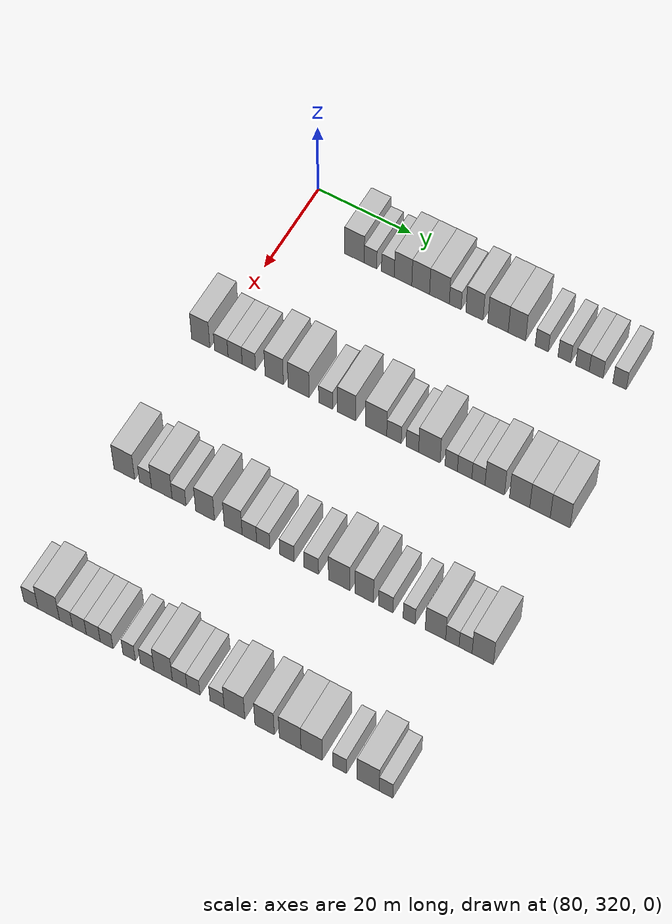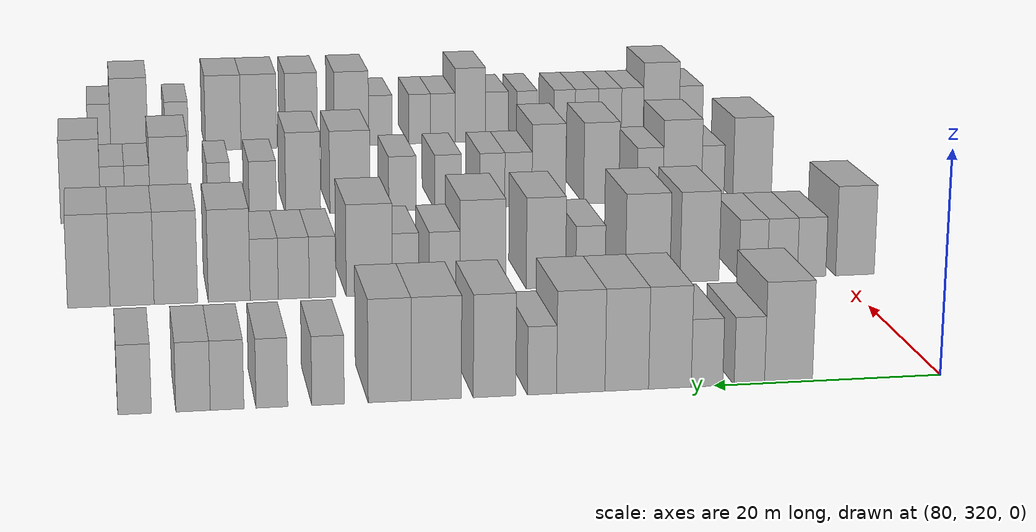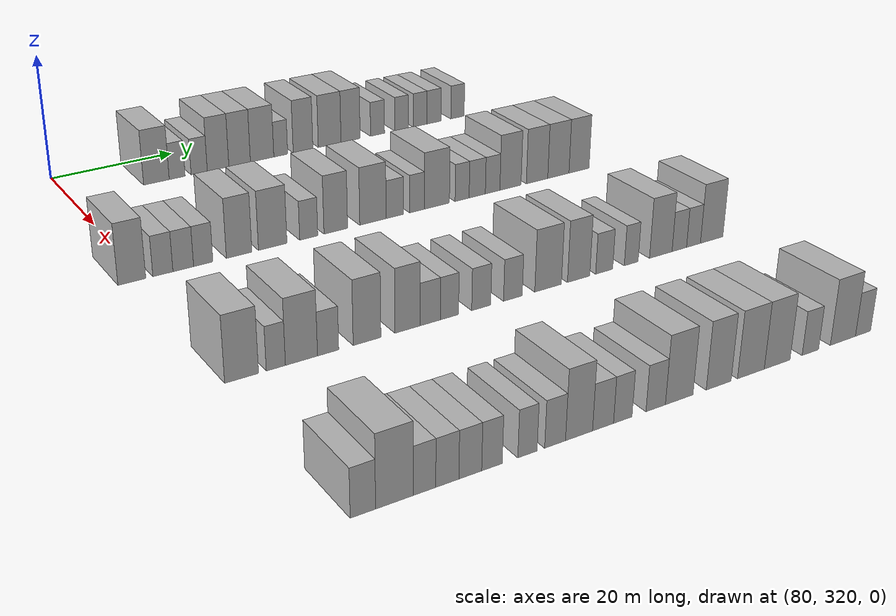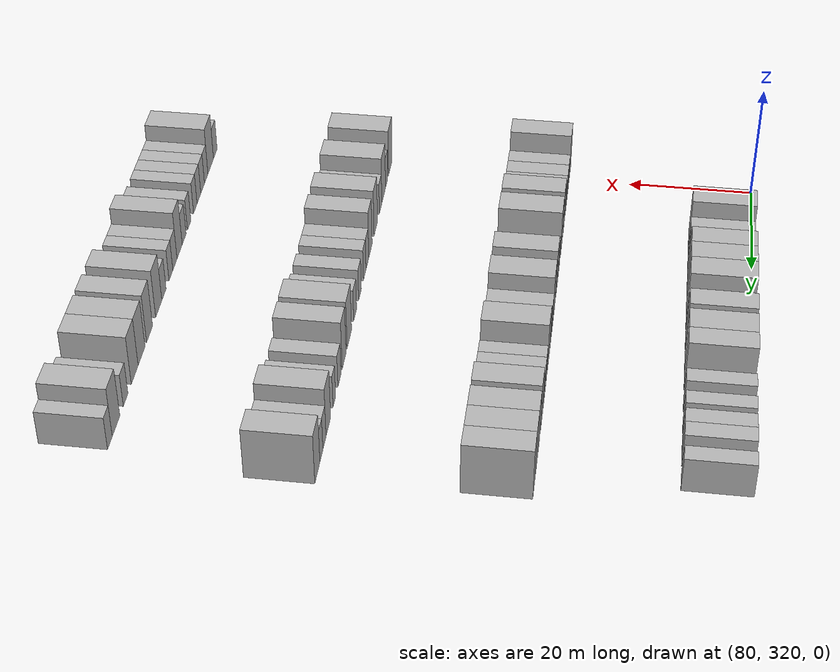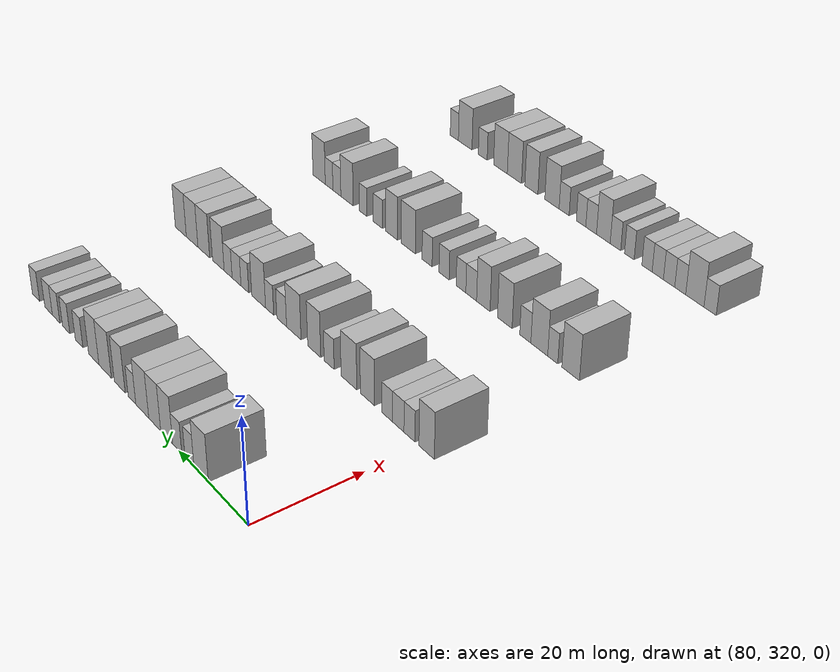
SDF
<sdf version="1.6">
 <world name="default">
  <model name="building_646">
   <static>1</static>
   <pose>85.0000 333.4798 0 0.000000 0.000000 0.000000</pose>
   <link name="link">
    <pose>0 0 4.50 0 0 0</pose>
    <collision name="collision"><geometry><box><size>10.0000 4.2072 9.0000</size></box></geometry></collision>
    <visual name="visual">
     <cast_shadows>0</cast_shadows>
     <geometry><box><size>10.0000 4.2072 9.0000</size></box></geometry>
     <material>
      <script>
       <uri>model://HANNAS_wall/materials/scripts</uri>
       <uri>model://HANNAS_wall/materials/textures</uri>
       <name>vrc/HANNAS_wall</name>
      </script>
     </material>
    </visual>
   </link>
  </model>
  <model name="building_647">
   <static>1</static>
   <pose>85.0000 336.9117 0 0.000000 0.000000 0.000000</pose>
   <link name="link">
    <pose>0 0 3.00 0 0 0</pose>
    <collision name="collision"><geometry><box><size>10.0000 2.6565 6.0000</size></box></geometry></collision>
    <visual name="visual">
     <cast_shadows>0</cast_shadows>
     <geometry><box><size>10.0000 2.6565 6.0000</size></box></geometry>
     <material>
      <script>
       <uri>model://HANNAS_wall/materials/scripts</uri>
       <uri>model://HANNAS_wall/materials/textures</uri>
       <name>vrc/HANNAS_wall</name>
      </script>
     </material>
    </visual>
   </link>
  </model>
  <model name="building_648">
   <static>1</static>
   <pose>85.0000 340.6097 0 0.000000 0.000000 0.000000</pose>
   <link name="link">
    <pose>0 0 3.00 0 0 0</pose>
    <collision name="collision"><geometry><box><size>10.0000 2.7394 6.0000</size></box></geometry></collision>
    <visual name="visual">
     <cast_shadows>0</cast_shadows>
     <geometry><box><size>10.0000 2.7394 6.0000</size></box></geometry>
     <material>
      <script>
       <uri>model://HANNAS_wall/materials/scripts</uri>
       <uri>model://HANNAS_wall/materials/textures</uri>
       <name>vrc/HANNAS_wall</name>
      </script>
     </material>
    </visual>
   </link>
  </model>
  <model name="building_649">
   <static>1</static>
   <pose>85.0000 343.8292 0 0.000000 0.000000 0.000000</pose>
   <link name="link">
    <pose>0 0 4.50 0 0 0</pose>
    <collision name="collision"><geometry><box><size>10.0000 3.6997 9.0000</size></box></geometry></collision>
    <visual name="visual">
     <cast_shadows>0</cast_shadows>
     <geometry><box><size>10.0000 3.6997 9.0000</size></box></geometry>
     <material>
      <script>
       <uri>model://HANNAS_wall/materials/scripts</uri>
       <uri>model://HANNAS_wall/materials/textures</uri>
       <name>vrc/HANNAS_wall</name>
      </script>
     </material>
    </visual>
   </link>
  </model>
  <model name="building_650">
   <static>1</static>
   <pose>85.0000 347.5577 0 0.000000 0.000000 0.000000</pose>
   <link name="link">
    <pose>0 0 4.50 0 0 0</pose>
    <collision name="collision"><geometry><box><size>10.0000 3.7573 9.0000</size></box></geometry></collision>
    <visual name="visual">
     <cast_shadows>0</cast_shadows>
     <geometry><box><size>10.0000 3.7573 9.0000</size></box></geometry>
     <material>
      <script>
       <uri>model://HANNAS_wall/materials/scripts</uri>
       <uri>model://HANNAS_wall/materials/textures</uri>
       <name>vrc/HANNAS_wall</name>
      </script>
     </material>
    </visual>
   </link>
  </model>
  <model name="building_651">
   <static>1</static>
   <pose>85.0000 351.5161 0 0.000000 0.000000 0.000000</pose>
   <link name="link">
    <pose>0 0 4.50 0 0 0</pose>
    <collision name="collision"><geometry><box><size>10.0000 4.1595 9.0000</size></box></geometry></collision>
    <visual name="visual">
     <cast_shadows>0</cast_shadows>
     <geometry><box><size>10.0000 4.1595 9.0000</size></box></geometry>
     <material>
      <script>
       <uri>model://HANNAS_wall/materials/scripts</uri>
       <uri>model://HANNAS_wall/materials/textures</uri>
       <name>vrc/HANNAS_wall</name>
      </script>
     </material>
    </visual>
   </link>
  </model>
  <model name="building_652">
   <static>1</static>
   <pose>85.0000 354.8378 0 0.000000 0.000000 0.000000</pose>
   <link name="link">
    <pose>0 0 3.00 0 0 0</pose>
    <collision name="collision"><geometry><box><size>10.0000 2.4839 6.0000</size></box></geometry></collision>
    <visual name="visual">
     <cast_shadows>0</cast_shadows>
     <geometry><box><size>10.0000 2.4839 6.0000</size></box></geometry>
     <material>
      <script>
       <uri>model://HANNAS_wall/materials/scripts</uri>
       <uri>model://HANNAS_wall/materials/textures</uri>
       <name>vrc/HANNAS_wall</name>
      </script>
     </material>
    </visual>
   </link>
  </model>
  <model name="building_653">
   <static>1</static>
   <pose>85.0000 358.8807 0 0.000000 0.000000 0.000000</pose>
   <link name="link">
    <pose>0 0 4.50 0 0 0</pose>
    <collision name="collision"><geometry><box><size>10.0000 3.6019 9.0000</size></box></geometry></collision>
    <visual name="visual">
     <cast_shadows>0</cast_shadows>
     <geometry><box><size>10.0000 3.6019 9.0000</size></box></geometry>
     <material>
      <script>
       <uri>model://HANNAS_wall/materials/scripts</uri>
       <uri>model://HANNAS_wall/materials/textures</uri>
       <name>vrc/HANNAS_wall</name>
      </script>
     </material>
    </visual>
   </link>
  </model>
  <model name="building_654">
   <static>1</static>
   <pose>85.0000 363.8014 0 0.000000 0.000000 0.000000</pose>
   <link name="link">
    <pose>0 0 4.50 0 0 0</pose>
    <collision name="collision"><geometry><box><size>10.0000 4.2394 9.0000</size></box></geometry></collision>
    <visual name="visual">
     <cast_shadows>0</cast_shadows>
     <geometry><box><size>10.0000 4.2394 9.0000</size></box></geometry>
     <material>
      <script>
       <uri>model://HANNAS_wall/materials/scripts</uri>
       <uri>model://HANNAS_wall/materials/textures</uri>
       <name>vrc/HANNAS_wall</name>
      </script>
     </material>
    </visual>
   </link>
  </model>
  <model name="building_655">
   <static>1</static>
   <pose>85.0000 367.7282 0 0.000000 0.000000 0.000000</pose>
   <link name="link">
    <pose>0 0 4.50 0 0 0</pose>
    <collision name="collision"><geometry><box><size>10.0000 3.6144 9.0000</size></box></geometry></collision>
    <visual name="visual">
     <cast_shadows>0</cast_shadows>
     <geometry><box><size>10.0000 3.6144 9.0000</size></box></geometry>
     <material>
      <script>
       <uri>model://HANNAS_wall/materials/scripts</uri>
       <uri>model://HANNAS_wall/materials/textures</uri>
       <name>vrc/HANNAS_wall</name>
      </script>
     </material>
    </visual>
   </link>
  </model>
  <model name="building_656">
   <static>1</static>
   <pose>85.0000 372.8891 0 0.000000 0.000000 0.000000</pose>
   <link name="link">
    <pose>0 0 3.00 0 0 0</pose>
    <collision name="collision"><geometry><box><size>10.0000 2.7073 6.0000</size></box></geometry></collision>
    <visual name="visual">
     <cast_shadows>0</cast_shadows>
     <geometry><box><size>10.0000 2.7073 6.0000</size></box></geometry>
     <material>
      <script>
       <uri>model://HANNAS_wall/materials/scripts</uri>
       <uri>model://HANNAS_wall/materials/textures</uri>
       <name>vrc/HANNAS_wall</name>
      </script>
     </material>
    </visual>
   </link>
  </model>
  <model name="building_657">
   <static>1</static>
   <pose>85.0000 377.5576 0 0.000000 0.000000 0.000000</pose>
   <link name="link">
    <pose>0 0 3.00 0 0 0</pose>
    <collision name="collision"><geometry><box><size>10.0000 2.6298 6.0000</size></box></geometry></collision>
    <visual name="visual">
     <cast_shadows>0</cast_shadows>
     <geometry><box><size>10.0000 2.6298 6.0000</size></box></geometry>
     <material>
      <script>
       <uri>model://HANNAS_wall/materials/scripts</uri>
       <uri>model://HANNAS_wall/materials/textures</uri>
       <name>vrc/HANNAS_wall</name>
      </script>
     </material>
    </visual>
   </link>
  </model>
  <model name="building_658">
   <static>1</static>
   <pose>85.0000 381.2581 0 0.000000 0.000000 0.000000</pose>
   <link name="link">
    <pose>0 0 3.00 0 0 0</pose>
    <collision name="collision"><geometry><box><size>10.0000 2.7710 6.0000</size></box></geometry></collision>
    <visual name="visual">
     <cast_shadows>0</cast_shadows>
     <geometry><box><size>10.0000 2.7710 6.0000</size></box></geometry>
     <material>
      <script>
       <uri>model://HANNAS_wall/materials/scripts</uri>
       <uri>model://HANNAS_wall/materials/textures</uri>
       <name>vrc/HANNAS_wall</name>
      </script>
     </material>
    </visual>
   </link>
  </model>
  <model name="building_659">
   <static>1</static>
   <pose>85.0000 384.0614 0 0.000000 0.000000 0.000000</pose>
   <link name="link">
    <pose>0 0 3.00 0 0 0</pose>
    <collision name="collision"><geometry><box><size>10.0000 2.8356 6.0000</size></box></geometry></collision>
    <visual name="visual">
     <cast_shadows>0</cast_shadows>
     <geometry><box><size>10.0000 2.8356 6.0000</size></box></geometry>
     <material>
      <script>
       <uri>model://HANNAS_wall/materials/scripts</uri>
       <uri>model://HANNAS_wall/materials/textures</uri>
       <name>vrc/HANNAS_wall</name>
      </script>
     </material>
    </visual>
   </link>
  </model>
  <model name="building_660">
   <static>1</static>
   <pose>85.0000 388.8547 0 0.000000 0.000000 0.000000</pose>
   <link name="link">
    <pose>0 0 3.00 0 0 0</pose>
    <collision name="collision"><geometry><box><size>10.0000 2.7510 6.0000</size></box></geometry></collision>
    <visual name="visual">
     <cast_shadows>0</cast_shadows>
     <geometry><box><size>10.0000 2.7510 6.0000</size></box></geometry>
     <material>
      <script>
       <uri>model://HANNAS_wall/materials/scripts</uri>
       <uri>model://HANNAS_wall/materials/textures</uri>
       <name>vrc/HANNAS_wall</name>
      </script>
     </material>
    </visual>
   </link>
  </model>
  <model name="building_885">
   <static>1</static>
   <pose>115.0000 318.2274 0 0.000000 0.000000 0.000000</pose>
   <link name="link">
    <pose>0 0 4.50 0 0 0</pose>
    <collision name="collision"><geometry><box><size>10.0000 3.9025 9.0000</size></box></geometry></collision>
    <visual name="visual">
     <cast_shadows>0</cast_shadows>
     <geometry><box><size>10.0000 3.9025 9.0000</size></box></geometry>
     <material>
      <script>
       <uri>model://HANNAS_wall/materials/scripts</uri>
       <uri>model://HANNAS_wall/materials/textures</uri>
       <name>vrc/HANNAS_wall</name>
      </script>
     </material>
    </visual>
   </link>
  </model>
  <model name="building_886">
   <static>1</static>
   <pose>115.0000 322.6109 0 0.000000 0.000000 0.000000</pose>
   <link name="link">
    <pose>0 0 3.00 0 0 0</pose>
    <collision name="collision"><geometry><box><size>10.0000 2.8645 6.0000</size></box></geometry></collision>
    <visual name="visual">
     <cast_shadows>0</cast_shadows>
     <geometry><box><size>10.0000 2.8645 6.0000</size></box></geometry>
     <material>
      <script>
       <uri>model://HANNAS_wall/materials/scripts</uri>
       <uri>model://HANNAS_wall/materials/textures</uri>
       <name>vrc/HANNAS_wall</name>
      </script>
     </material>
    </visual>
   </link>
  </model>
  <model name="building_887">
   <static>1</static>
   <pose>115.0000 325.5426 0 0.000000 0.000000 0.000000</pose>
   <link name="link">
    <pose>0 0 3.00 0 0 0</pose>
    <collision name="collision"><geometry><box><size>10.0000 2.9990 6.0000</size></box></geometry></collision>
    <visual name="visual">
     <cast_shadows>0</cast_shadows>
     <geometry><box><size>10.0000 2.9990 6.0000</size></box></geometry>
     <material>
      <script>
       <uri>model://HANNAS_wall/materials/scripts</uri>
       <uri>model://HANNAS_wall/materials/textures</uri>
       <name>vrc/HANNAS_wall</name>
      </script>
     </material>
    </visual>
   </link>
  </model>
  <model name="building_888">
   <static>1</static>
   <pose>115.0000 328.4643 0 0.000000 0.000000 0.000000</pose>
   <link name="link">
    <pose>0 0 3.00 0 0 0</pose>
    <collision name="collision"><geometry><box><size>10.0000 2.8444 6.0000</size></box></geometry></collision>
    <visual name="visual">
     <cast_shadows>0</cast_shadows>
     <geometry><box><size>10.0000 2.8444 6.0000</size></box></geometry>
     <material>
      <script>
       <uri>model://HANNAS_wall/materials/scripts</uri>
       <uri>model://HANNAS_wall/materials/textures</uri>
       <name>vrc/HANNAS_wall</name>
      </script>
     </material>
    </visual>
   </link>
  </model>
  <model name="building_889">
   <static>1</static>
   <pose>115.0000 333.8182 0 0.000000 0.000000 0.000000</pose>
   <link name="link">
    <pose>0 0 4.50 0 0 0</pose>
    <collision name="collision"><geometry><box><size>10.0000 3.8633 9.0000</size></box></geometry></collision>
    <visual name="visual">
     <cast_shadows>0</cast_shadows>
     <geometry><box><size>10.0000 3.8633 9.0000</size></box></geometry>
     <material>
      <script>
       <uri>model://HANNAS_wall/materials/scripts</uri>
       <uri>model://HANNAS_wall/materials/textures</uri>
       <name>vrc/HANNAS_wall</name>
      </script>
     </material>
    </visual>
   </link>
  </model>
  <model name="building_890">
   <static>1</static>
   <pose>115.0000 338.9547 0 0.000000 0.000000 0.000000</pose>
   <link name="link">
    <pose>0 0 4.50 0 0 0</pose>
    <collision name="collision"><geometry><box><size>10.0000 4.4098 9.0000</size></box></geometry></collision>
    <visual name="visual">
     <cast_shadows>0</cast_shadows>
     <geometry><box><size>10.0000 4.4098 9.0000</size></box></geometry>
     <material>
      <script>
       <uri>model://HANNAS_wall/materials/scripts</uri>
       <uri>model://HANNAS_wall/materials/textures</uri>
       <name>vrc/HANNAS_wall</name>
      </script>
     </material>
    </visual>
   </link>
  </model>
  <model name="building_891">
   <static>1</static>
   <pose>115.0000 344.5963 0 0.000000 0.000000 0.000000</pose>
   <link name="link">
    <pose>0 0 3.00 0 0 0</pose>
    <collision name="collision"><geometry><box><size>10.0000 2.8732 6.0000</size></box></geometry></collision>
    <visual name="visual">
     <cast_shadows>0</cast_shadows>
     <geometry><box><size>10.0000 2.8732 6.0000</size></box></geometry>
     <material>
      <script>
       <uri>model://HANNAS_wall/materials/scripts</uri>
       <uri>model://HANNAS_wall/materials/textures</uri>
       <name>vrc/HANNAS_wall</name>
      </script>
     </material>
    </visual>
   </link>
  </model>
  <model name="building_892">
   <static>1</static>
   <pose>115.0000 348.9524 0 0.000000 0.000000 0.000000</pose>
   <link name="link">
    <pose>0 0 4.50 0 0 0</pose>
    <collision name="collision"><geometry><box><size>10.0000 3.8391 9.0000</size></box></geometry></collision>
    <visual name="visual">
     <cast_shadows>0</cast_shadows>
     <geometry><box><size>10.0000 3.8391 9.0000</size></box></geometry>
     <material>
      <script>
       <uri>model://HANNAS_wall/materials/scripts</uri>
       <uri>model://HANNAS_wall/materials/textures</uri>
       <name>vrc/HANNAS_wall</name>
      </script>
     </material>
    </visual>
   </link>
  </model>
  <model name="building_893">
   <static>1</static>
   <pose>115.0000 355.0720 0 0.000000 0.000000 0.000000</pose>
   <link name="link">
    <pose>0 0 4.50 0 0 0</pose>
    <collision name="collision"><geometry><box><size>10.0000 4.4001 9.0000</size></box></geometry></collision>
    <visual name="visual">
     <cast_shadows>0</cast_shadows>
     <geometry><box><size>10.0000 4.4001 9.0000</size></box></geometry>
     <material>
      <script>
       <uri>model://HANNAS_wall/materials/scripts</uri>
       <uri>model://HANNAS_wall/materials/textures</uri>
       <name>vrc/HANNAS_wall</name>
      </script>
     </material>
    </visual>
   </link>
  </model>
  <model name="building_894">
   <static>1</static>
   <pose>115.0000 358.7644 0 0.000000 0.000000 0.000000</pose>
   <link name="link">
    <pose>0 0 3.00 0 0 0</pose>
    <collision name="collision"><geometry><box><size>10.0000 2.9847 6.0000</size></box></geometry></collision>
    <visual name="visual">
     <cast_shadows>0</cast_shadows>
     <geometry><box><size>10.0000 2.9847 6.0000</size></box></geometry>
     <material>
      <script>
       <uri>model://HANNAS_wall/materials/scripts</uri>
       <uri>model://HANNAS_wall/materials/textures</uri>
       <name>vrc/HANNAS_wall</name>
      </script>
     </material>
    </visual>
   </link>
  </model>
  <model name="building_895">
   <static>1</static>
   <pose>115.0000 362.5402 0 0.000000 0.000000 0.000000</pose>
   <link name="link">
    <pose>0 0 3.00 0 0 0</pose>
    <collision name="collision"><geometry><box><size>10.0000 2.5668 6.0000</size></box></geometry></collision>
    <visual name="visual">
     <cast_shadows>0</cast_shadows>
     <geometry><box><size>10.0000 2.5668 6.0000</size></box></geometry>
     <material>
      <script>
       <uri>model://HANNAS_wall/materials/scripts</uri>
       <uri>model://HANNAS_wall/materials/textures</uri>
       <name>vrc/HANNAS_wall</name>
      </script>
     </material>
    </visual>
   </link>
  </model>
  <model name="building_896">
   <static>1</static>
   <pose>115.0000 366.0227 0 0.000000 0.000000 0.000000</pose>
   <link name="link">
    <pose>0 0 4.50 0 0 0</pose>
    <collision name="collision"><geometry><box><size>10.0000 4.3983 9.0000</size></box></geometry></collision>
    <visual name="visual">
     <cast_shadows>0</cast_shadows>
     <geometry><box><size>10.0000 4.3983 9.0000</size></box></geometry>
     <material>
      <script>
       <uri>model://HANNAS_wall/materials/scripts</uri>
       <uri>model://HANNAS_wall/materials/textures</uri>
       <name>vrc/HANNAS_wall</name>
      </script>
     </material>
    </visual>
   </link>
  </model>
  <model name="building_897">
   <static>1</static>
   <pose>115.0000 370.4817 0 0.000000 0.000000 0.000000</pose>
   <link name="link">
    <pose>0 0 3.00 0 0 0</pose>
    <collision name="collision"><geometry><box><size>10.0000 2.5195 6.0000</size></box></geometry></collision>
    <visual name="visual">
     <cast_shadows>0</cast_shadows>
     <geometry><box><size>10.0000 2.5195 6.0000</size></box></geometry>
     <material>
      <script>
       <uri>model://HANNAS_wall/materials/scripts</uri>
       <uri>model://HANNAS_wall/materials/textures</uri>
       <name>vrc/HANNAS_wall</name>
      </script>
     </material>
    </visual>
   </link>
  </model>
  <model name="building_898">
   <static>1</static>
   <pose>115.0000 373.2117 0 0.000000 0.000000 0.000000</pose>
   <link name="link">
    <pose>0 0 3.00 0 0 0</pose>
    <collision name="collision"><geometry><box><size>10.0000 2.9405 6.0000</size></box></geometry></collision>
    <visual name="visual">
     <cast_shadows>0</cast_shadows>
     <geometry><box><size>10.0000 2.9405 6.0000</size></box></geometry>
     <material>
      <script>
       <uri>model://HANNAS_wall/materials/scripts</uri>
       <uri>model://HANNAS_wall/materials/textures</uri>
       <name>vrc/HANNAS_wall</name>
      </script>
     </material>
    </visual>
   </link>
  </model>
  <model name="building_899">
   <static>1</static>
   <pose>115.0000 376.0161 0 0.000000 0.000000 0.000000</pose>
   <link name="link">
    <pose>0 0 3.00 0 0 0</pose>
    <collision name="collision"><geometry><box><size>10.0000 2.6683 6.0000</size></box></geometry></collision>
    <visual name="visual">
     <cast_shadows>0</cast_shadows>
     <geometry><box><size>10.0000 2.6683 6.0000</size></box></geometry>
     <material>
      <script>
       <uri>model://HANNAS_wall/materials/scripts</uri>
       <uri>model://HANNAS_wall/materials/textures</uri>
       <name>vrc/HANNAS_wall</name>
      </script>
     </material>
    </visual>
   </link>
  </model>
  <model name="building_900">
   <static>1</static>
   <pose>115.0000 379.3204 0 0.000000 0.000000 0.000000</pose>
   <link name="link">
    <pose>0 0 4.50 0 0 0</pose>
    <collision name="collision"><geometry><box><size>10.0000 3.9404 9.0000</size></box></geometry></collision>
    <visual name="visual">
     <cast_shadows>0</cast_shadows>
     <geometry><box><size>10.0000 3.9404 9.0000</size></box></geometry>
     <material>
      <script>
       <uri>model://HANNAS_wall/materials/scripts</uri>
       <uri>model://HANNAS_wall/materials/textures</uri>
       <name>vrc/HANNAS_wall</name>
      </script>
     </material>
    </visual>
   </link>
  </model>
  <model name="building_901">
   <static>1</static>
   <pose>115.0000 384.3310 0 0.000000 0.000000 0.000000</pose>
   <link name="link">
    <pose>0 0 4.50 0 0 0</pose>
    <collision name="collision"><geometry><box><size>10.0000 4.0807 9.0000</size></box></geometry></collision>
    <visual name="visual">
     <cast_shadows>0</cast_shadows>
     <geometry><box><size>10.0000 4.0807 9.0000</size></box></geometry>
     <material>
      <script>
       <uri>model://HANNAS_wall/materials/scripts</uri>
       <uri>model://HANNAS_wall/materials/textures</uri>
       <name>vrc/HANNAS_wall</name>
      </script>
     </material>
    </visual>
   </link>
  </model>
  <model name="building_902">
   <static>1</static>
   <pose>115.0000 388.4228 0 0.000000 0.000000 0.000000</pose>
   <link name="link">
    <pose>0 0 4.50 0 0 0</pose>
    <collision name="collision"><geometry><box><size>10.0000 4.1030 9.0000</size></box></geometry></collision>
    <visual name="visual">
     <cast_shadows>0</cast_shadows>
     <geometry><box><size>10.0000 4.1030 9.0000</size></box></geometry>
     <material>
      <script>
       <uri>model://HANNAS_wall/materials/scripts</uri>
       <uri>model://HANNAS_wall/materials/textures</uri>
       <name>vrc/HANNAS_wall</name>
      </script>
     </material>
    </visual>
   </link>
  </model>
  <model name="building_903">
   <static>1</static>
   <pose>115.0000 392.4527 0 0.000000 0.000000 0.000000</pose>
   <link name="link">
    <pose>0 0 4.50 0 0 0</pose>
    <collision name="collision"><geometry><box><size>10.0000 3.9569 9.0000</size></box></geometry></collision>
    <visual name="visual">
     <cast_shadows>0</cast_shadows>
     <geometry><box><size>10.0000 3.9569 9.0000</size></box></geometry>
     <material>
      <script>
       <uri>model://HANNAS_wall/materials/scripts</uri>
       <uri>model://HANNAS_wall/materials/textures</uri>
       <name>vrc/HANNAS_wall</name>
      </script>
     </material>
    </visual>
   </link>
  </model>
  <model name="building_1110">
   <static>1</static>
   <pose>145.0000 320.4737 0 0.000000 0.000000 0.000000</pose>
   <link name="link">
    <pose>0 0 4.50 0 0 0</pose>
    <collision name="collision"><geometry><box><size>10.0000 4.3438 9.0000</size></box></geometry></collision>
    <visual name="visual">
     <cast_shadows>0</cast_shadows>
     <geometry><box><size>10.0000 4.3438 9.0000</size></box></geometry>
     <material>
      <script>
       <uri>model://HANNAS_wall/materials/scripts</uri>
       <uri>model://HANNAS_wall/materials/textures</uri>
       <name>vrc/HANNAS_wall</name>
      </script>
     </material>
    </visual>
   </link>
  </model>
  <model name="building_1111">
   <static>1</static>
   <pose>145.0000 324.9045 0 0.000000 0.000000 0.000000</pose>
   <link name="link">
    <pose>0 0 3.00 0 0 0</pose>
    <collision name="collision"><geometry><box><size>10.0000 2.5177 6.0000</size></box></geometry></collision>
    <visual name="visual">
     <cast_shadows>0</cast_shadows>
     <geometry><box><size>10.0000 2.5177 6.0000</size></box></geometry>
     <material>
      <script>
       <uri>model://HANNAS_wall/materials/scripts</uri>
       <uri>model://HANNAS_wall/materials/textures</uri>
       <name>vrc/HANNAS_wall</name>
      </script>
     </material>
    </visual>
   </link>
  </model>
  <model name="building_1112">
   <static>1</static>
   <pose>145.0000 328.3100 0 0.000000 0.000000 0.000000</pose>
   <link name="link">
    <pose>0 0 4.50 0 0 0</pose>
    <collision name="collision"><geometry><box><size>10.0000 4.2935 9.0000</size></box></geometry></collision>
    <visual name="visual">
     <cast_shadows>0</cast_shadows>
     <geometry><box><size>10.0000 4.2935 9.0000</size></box></geometry>
     <material>
      <script>
       <uri>model://HANNAS_wall/materials/scripts</uri>
       <uri>model://HANNAS_wall/materials/textures</uri>
       <name>vrc/HANNAS_wall</name>
      </script>
     </material>
    </visual>
   </link>
  </model>
  <model name="building_1113">
   <static>1</static>
   <pose>145.0000 331.9032 0 0.000000 0.000000 0.000000</pose>
   <link name="link">
    <pose>0 0 3.00 0 0 0</pose>
    <collision name="collision"><geometry><box><size>10.0000 2.8929 6.0000</size></box></geometry></collision>
    <visual name="visual">
     <cast_shadows>0</cast_shadows>
     <geometry><box><size>10.0000 2.8929 6.0000</size></box></geometry>
     <material>
      <script>
       <uri>model://HANNAS_wall/materials/scripts</uri>
       <uri>model://HANNAS_wall/materials/textures</uri>
       <name>vrc/HANNAS_wall</name>
      </script>
     </material>
    </visual>
   </link>
  </model>
  <model name="building_1114">
   <static>1</static>
   <pose>145.0000 337.2973 0 0.000000 0.000000 0.000000</pose>
   <link name="link">
    <pose>0 0 4.50 0 0 0</pose>
    <collision name="collision"><geometry><box><size>10.0000 3.8953 9.0000</size></box></geometry></collision>
    <visual name="visual">
     <cast_shadows>0</cast_shadows>
     <geometry><box><size>10.0000 3.8953 9.0000</size></box></geometry>
     <material>
      <script>
       <uri>model://HANNAS_wall/materials/scripts</uri>
       <uri>model://HANNAS_wall/materials/textures</uri>
       <name>vrc/HANNAS_wall</name>
      </script>
     </material>
    </visual>
   </link>
  </model>
  <model name="building_1115">
   <static>1</static>
   <pose>145.0000 343.0863 0 0.000000 0.000000 0.000000</pose>
   <link name="link">
    <pose>0 0 4.50 0 0 0</pose>
    <collision name="collision"><geometry><box><size>10.0000 3.6827 9.0000</size></box></geometry></collision>
    <visual name="visual">
     <cast_shadows>0</cast_shadows>
     <geometry><box><size>10.0000 3.6827 9.0000</size></box></geometry>
     <material>
      <script>
       <uri>model://HANNAS_wall/materials/scripts</uri>
       <uri>model://HANNAS_wall/materials/textures</uri>
       <name>vrc/HANNAS_wall</name>
      </script>
     </material>
    </visual>
   </link>
  </model>
  <model name="building_1116">
   <static>1</static>
   <pose>145.0000 346.4132 0 0.000000 0.000000 0.000000</pose>
   <link name="link">
    <pose>0 0 3.00 0 0 0</pose>
    <collision name="collision"><geometry><box><size>10.0000 2.9711 6.0000</size></box></geometry></collision>
    <visual name="visual">
     <cast_shadows>0</cast_shadows>
     <geometry><box><size>10.0000 2.9711 6.0000</size></box></geometry>
     <material>
      <script>
       <uri>model://HANNAS_wall/materials/scripts</uri>
       <uri>model://HANNAS_wall/materials/textures</uri>
       <name>vrc/HANNAS_wall</name>
      </script>
     </material>
    </visual>
   </link>
  </model>
  <model name="building_1117">
   <static>1</static>
   <pose>145.0000 349.2578 0 0.000000 0.000000 0.000000</pose>
   <link name="link">
    <pose>0 0 3.00 0 0 0</pose>
    <collision name="collision"><geometry><box><size>10.0000 2.7181 6.0000</size></box></geometry></collision>
    <visual name="visual">
     <cast_shadows>0</cast_shadows>
     <geometry><box><size>10.0000 2.7181 6.0000</size></box></geometry>
     <material>
      <script>
       <uri>model://HANNAS_wall/materials/scripts</uri>
       <uri>model://HANNAS_wall/materials/textures</uri>
       <name>vrc/HANNAS_wall</name>
      </script>
     </material>
    </visual>
   </link>
  </model>
  <model name="building_1118">
   <static>1</static>
   <pose>145.0000 354.0803 0 0.000000 0.000000 0.000000</pose>
   <link name="link">
    <pose>0 0 3.00 0 0 0</pose>
    <collision name="collision"><geometry><box><size>10.0000 2.9269 6.0000</size></box></geometry></collision>
    <visual name="visual">
     <cast_shadows>0</cast_shadows>
     <geometry><box><size>10.0000 2.9269 6.0000</size></box></geometry>
     <material>
      <script>
       <uri>model://HANNAS_wall/materials/scripts</uri>
       <uri>model://HANNAS_wall/materials/textures</uri>
       <name>vrc/HANNAS_wall</name>
      </script>
     </material>
    </visual>
   </link>
  </model>
  <model name="building_1119">
   <static>1</static>
   <pose>145.0000 359.0210 0 0.000000 0.000000 0.000000</pose>
   <link name="link">
    <pose>0 0 3.00 0 0 0</pose>
    <collision name="collision"><geometry><box><size>10.0000 2.9544 6.0000</size></box></geometry></collision>
    <visual name="visual">
     <cast_shadows>0</cast_shadows>
     <geometry><box><size>10.0000 2.9544 6.0000</size></box></geometry>
     <material>
      <script>
       <uri>model://HANNAS_wall/materials/scripts</uri>
       <uri>model://HANNAS_wall/materials/textures</uri>
       <name>vrc/HANNAS_wall</name>
      </script>
     </material>
    </visual>
   </link>
  </model>
  <model name="building_1120">
   <static>1</static>
   <pose>145.0000 364.6606 0 0.000000 0.000000 0.000000</pose>
   <link name="link">
    <pose>0 0 4.50 0 0 0</pose>
    <collision name="collision"><geometry><box><size>10.0000 4.3249 9.0000</size></box></geometry></collision>
    <visual name="visual">
     <cast_shadows>0</cast_shadows>
     <geometry><box><size>10.0000 4.3249 9.0000</size></box></geometry>
     <material>
      <script>
       <uri>model://HANNAS_wall/materials/scripts</uri>
       <uri>model://HANNAS_wall/materials/textures</uri>
       <name>vrc/HANNAS_wall</name>
      </script>
     </material>
    </visual>
   </link>
  </model>
  <model name="building_1121">
   <static>1</static>
   <pose>145.0000 369.6766 0 0.000000 0.000000 0.000000</pose>
   <link name="link">
    <pose>0 0 4.50 0 0 0</pose>
    <collision name="collision"><geometry><box><size>10.0000 3.7070 9.0000</size></box></geometry></collision>
    <visual name="visual">
     <cast_shadows>0</cast_shadows>
     <geometry><box><size>10.0000 3.7070 9.0000</size></box></geometry>
     <material>
      <script>
       <uri>model://HANNAS_wall/materials/scripts</uri>
       <uri>model://HANNAS_wall/materials/textures</uri>
       <name>vrc/HANNAS_wall</name>
      </script>
     </material>
    </visual>
   </link>
  </model>
  <model name="building_1122">
   <static>1</static>
   <pose>145.0000 373.9814 0 0.000000 0.000000 0.000000</pose>
   <link name="link">
    <pose>0 0 3.00 0 0 0</pose>
    <collision name="collision"><geometry><box><size>10.0000 2.9026 6.0000</size></box></geometry></collision>
    <visual name="visual">
     <cast_shadows>0</cast_shadows>
     <geometry><box><size>10.0000 2.9026 6.0000</size></box></geometry>
     <material>
      <script>
       <uri>model://HANNAS_wall/materials/scripts</uri>
       <uri>model://HANNAS_wall/materials/textures</uri>
       <name>vrc/HANNAS_wall</name>
      </script>
     </material>
    </visual>
   </link>
  </model>
  <model name="building_1123">
   <static>1</static>
   <pose>145.0000 378.6366 0 0.000000 0.000000 0.000000</pose>
   <link name="link">
    <pose>0 0 3.00 0 0 0</pose>
    <collision name="collision"><geometry><box><size>10.0000 2.4078 6.0000</size></box></geometry></collision>
    <visual name="visual">
     <cast_shadows>0</cast_shadows>
     <geometry><box><size>10.0000 2.4078 6.0000</size></box></geometry>
     <material>
      <script>
       <uri>model://HANNAS_wall/materials/scripts</uri>
       <uri>model://HANNAS_wall/materials/textures</uri>
       <name>vrc/HANNAS_wall</name>
      </script>
     </material>
    </visual>
   </link>
  </model>
  <model name="building_1124">
   <static>1</static>
   <pose>145.0000 383.8599 0 0.000000 0.000000 0.000000</pose>
   <link name="link">
    <pose>0 0 4.50 0 0 0</pose>
    <collision name="collision"><geometry><box><size>10.0000 4.0387 9.0000</size></box></geometry></collision>
    <visual name="visual">
     <cast_shadows>0</cast_shadows>
     <geometry><box><size>10.0000 4.0387 9.0000</size></box></geometry>
     <material>
      <script>
       <uri>model://HANNAS_wall/materials/scripts</uri>
       <uri>model://HANNAS_wall/materials/textures</uri>
       <name>vrc/HANNAS_wall</name>
      </script>
     </material>
    </visual>
   </link>
  </model>
  <model name="building_1125">
   <static>1</static>
   <pose>145.0000 387.1964 0 0.000000 0.000000 0.000000</pose>
   <link name="link">
    <pose>0 0 3.00 0 0 0</pose>
    <collision name="collision"><geometry><box><size>10.0000 2.6344 6.0000</size></box></geometry></collision>
    <visual name="visual">
     <cast_shadows>0</cast_shadows>
     <geometry><box><size>10.0000 2.6344 6.0000</size></box></geometry>
     <material>
      <script>
       <uri>model://HANNAS_wall/materials/scripts</uri>
       <uri>model://HANNAS_wall/materials/textures</uri>
       <name>vrc/HANNAS_wall</name>
      </script>
     </material>
    </visual>
   </link>
  </model>
  <model name="building_1126">
   <static>1</static>
   <pose>145.0000 389.7911 0 0.000000 0.000000 0.000000</pose>
   <link name="link">
    <pose>0 0 3.00 0 0 0</pose>
    <collision name="collision"><geometry><box><size>10.0000 2.5550 6.0000</size></box></geometry></collision>
    <visual name="visual">
     <cast_shadows>0</cast_shadows>
     <geometry><box><size>10.0000 2.5550 6.0000</size></box></geometry>
     <material>
      <script>
       <uri>model://HANNAS_wall/materials/scripts</uri>
       <uri>model://HANNAS_wall/materials/textures</uri>
       <name>vrc/HANNAS_wall</name>
      </script>
     </material>
    </visual>
   </link>
  </model>
  <model name="building_1127">
   <static>1</static>
   <pose>145.0000 393.1622 0 0.000000 0.000000 0.000000</pose>
   <link name="link">
    <pose>0 0 4.50 0 0 0</pose>
    <collision name="collision"><geometry><box><size>10.0000 4.1872 9.0000</size></box></geometry></collision>
    <visual name="visual">
     <cast_shadows>0</cast_shadows>
     <geometry><box><size>10.0000 4.1872 9.0000</size></box></geometry>
     <material>
      <script>
       <uri>model://HANNAS_wall/materials/scripts</uri>
       <uri>model://HANNAS_wall/materials/textures</uri>
       <name>vrc/HANNAS_wall</name>
      </script>
     </material>
    </visual>
   </link>
  </model>
  <model name="building_1325">
   <static>1</static>
   <pose>175.0000 320.0284 0 0.000000 0.000000 0.000000</pose>
   <link name="link">
    <pose>0 0 3.00 0 0 0</pose>
    <collision name="collision"><geometry><box><size>10.0000 2.9193 6.0000</size></box></geometry></collision>
    <visual name="visual">
     <cast_shadows>0</cast_shadows>
     <geometry><box><size>10.0000 2.9193 6.0000</size></box></geometry>
     <material>
      <script>
       <uri>model://HANNAS_wall/materials/scripts</uri>
       <uri>model://HANNAS_wall/materials/textures</uri>
       <name>vrc/HANNAS_wall</name>
      </script>
     </material>
    </visual>
   </link>
  </model>
  <model name="building_1326">
   <static>1</static>
   <pose>175.0000 323.6983 0 0.000000 0.000000 0.000000</pose>
   <link name="link">
    <pose>0 0 4.50 0 0 0</pose>
    <collision name="collision"><geometry><box><size>10.0000 4.4206 9.0000</size></box></geometry></collision>
    <visual name="visual">
     <cast_shadows>0</cast_shadows>
     <geometry><box><size>10.0000 4.4206 9.0000</size></box></geometry>
     <material>
      <script>
       <uri>model://HANNAS_wall/materials/scripts</uri>
       <uri>model://HANNAS_wall/materials/textures</uri>
       <name>vrc/HANNAS_wall</name>
      </script>
     </material>
    </visual>
   </link>
  </model>
  <model name="building_1327">
   <static>1</static>
   <pose>175.0000 327.2572 0 0.000000 0.000000 0.000000</pose>
   <link name="link">
    <pose>0 0 3.00 0 0 0</pose>
    <collision name="collision"><geometry><box><size>10.0000 2.6972 6.0000</size></box></geometry></collision>
    <visual name="visual">
     <cast_shadows>0</cast_shadows>
     <geometry><box><size>10.0000 2.6972 6.0000</size></box></geometry>
     <material>
      <script>
       <uri>model://HANNAS_wall/materials/scripts</uri>
       <uri>model://HANNAS_wall/materials/textures</uri>
       <name>vrc/HANNAS_wall</name>
      </script>
     </material>
    </visual>
   </link>
  </model>
  <model name="building_1328">
   <static>1</static>
   <pose>175.0000 330.0209 0 0.000000 0.000000 0.000000</pose>
   <link name="link">
    <pose>0 0 3.00 0 0 0</pose>
    <collision name="collision"><geometry><box><size>10.0000 2.8301 6.0000</size></box></geometry></collision>
    <visual name="visual">
     <cast_shadows>0</cast_shadows>
     <geometry><box><size>10.0000 2.8301 6.0000</size></box></geometry>
     <material>
      <script>
       <uri>model://HANNAS_wall/materials/scripts</uri>
       <uri>model://HANNAS_wall/materials/textures</uri>
       <name>vrc/HANNAS_wall</name>
      </script>
     </material>
    </visual>
   </link>
  </model>
  <model name="building_1329">
   <static>1</static>
   <pose>175.0000 332.8590 0 0.000000 0.000000 0.000000</pose>
   <link name="link">
    <pose>0 0 3.00 0 0 0</pose>
    <collision name="collision"><geometry><box><size>10.0000 2.8462 6.0000</size></box></geometry></collision>
    <visual name="visual">
     <cast_shadows>0</cast_shadows>
     <geometry><box><size>10.0000 2.8462 6.0000</size></box></geometry>
     <material>
      <script>
       <uri>model://HANNAS_wall/materials/scripts</uri>
       <uri>model://HANNAS_wall/materials/textures</uri>
       <name>vrc/HANNAS_wall</name>
      </script>
     </material>
    </visual>
   </link>
  </model>
  <model name="building_1330">
   <static>1</static>
   <pose>175.0000 335.5892 0 0.000000 0.000000 0.000000</pose>
   <link name="link">
    <pose>0 0 3.00 0 0 0</pose>
    <collision name="collision"><geometry><box><size>10.0000 2.6143 6.0000</size></box></geometry></collision>
    <visual name="visual">
     <cast_shadows>0</cast_shadows>
     <geometry><box><size>10.0000 2.6143 6.0000</size></box></geometry>
     <material>
      <script>
       <uri>model://HANNAS_wall/materials/scripts</uri>
       <uri>model://HANNAS_wall/materials/textures</uri>
       <name>vrc/HANNAS_wall</name>
      </script>
     </material>
    </visual>
   </link>
  </model>
  <model name="building_1331">
   <static>1</static>
   <pose>175.0000 340.1539 0 0.000000 0.000000 0.000000</pose>
   <link name="link">
    <pose>0 0 3.00 0 0 0</pose>
    <collision name="collision"><geometry><box><size>10.0000 2.5149 6.0000</size></box></geometry></collision>
    <visual name="visual">
     <cast_shadows>0</cast_shadows>
     <geometry><box><size>10.0000 2.5149 6.0000</size></box></geometry>
     <material>
      <script>
       <uri>model://HANNAS_wall/materials/scripts</uri>
       <uri>model://HANNAS_wall/materials/textures</uri>
       <name>vrc/HANNAS_wall</name>
      </script>
     </material>
    </visual>
   </link>
  </model>
  <model name="building_1332">
   <static>1</static>
   <pose>175.0000 343.8034 0 0.000000 0.000000 0.000000</pose>
   <link name="link">
    <pose>0 0 3.00 0 0 0</pose>
    <collision name="collision"><geometry><box><size>10.0000 2.7842 6.0000</size></box></geometry></collision>
    <visual name="visual">
     <cast_shadows>0</cast_shadows>
     <geometry><box><size>10.0000 2.7842 6.0000</size></box></geometry>
     <material>
      <script>
       <uri>model://HANNAS_wall/materials/scripts</uri>
       <uri>model://HANNAS_wall/materials/textures</uri>
       <name>vrc/HANNAS_wall</name>
      </script>
     </material>
    </visual>
   </link>
  </model>
  <model name="building_1333">
   <static>1</static>
   <pose>175.0000 347.0368 0 0.000000 0.000000 0.000000</pose>
   <link name="link">
    <pose>0 0 4.50 0 0 0</pose>
    <collision name="collision"><geometry><box><size>10.0000 3.6825 9.0000</size></box></geometry></collision>
    <visual name="visual">
     <cast_shadows>0</cast_shadows>
     <geometry><box><size>10.0000 3.6825 9.0000</size></box></geometry>
     <material>
      <script>
       <uri>model://HANNAS_wall/materials/scripts</uri>
       <uri>model://HANNAS_wall/materials/textures</uri>
       <name>vrc/HANNAS_wall</name>
      </script>
     </material>
    </visual>
   </link>
  </model>
  <model name="building_1334">
   <static>1</static>
   <pose>175.0000 350.3385 0 0.000000 0.000000 0.000000</pose>
   <link name="link">
    <pose>0 0 3.00 0 0 0</pose>
    <collision name="collision"><geometry><box><size>10.0000 2.9209 6.0000</size></box></geometry></collision>
    <visual name="visual">
     <cast_shadows>0</cast_shadows>
     <geometry><box><size>10.0000 2.9209 6.0000</size></box></geometry>
     <material>
      <script>
       <uri>model://HANNAS_wall/materials/scripts</uri>
       <uri>model://HANNAS_wall/materials/textures</uri>
       <name>vrc/HANNAS_wall</name>
      </script>
     </material>
    </visual>
   </link>
  </model>
  <model name="building_1335">
   <static>1</static>
   <pose>175.0000 353.1075 0 0.000000 0.000000 0.000000</pose>
   <link name="link">
    <pose>0 0 3.00 0 0 0</pose>
    <collision name="collision"><geometry><box><size>10.0000 2.6171 6.0000</size></box></geometry></collision>
    <visual name="visual">
     <cast_shadows>0</cast_shadows>
     <geometry><box><size>10.0000 2.6171 6.0000</size></box></geometry>
     <material>
      <script>
       <uri>model://HANNAS_wall/materials/scripts</uri>
       <uri>model://HANNAS_wall/materials/textures</uri>
       <name>vrc/HANNAS_wall</name>
      </script>
     </material>
    </visual>
   </link>
  </model>
  <model name="building_1336">
   <static>1</static>
   <pose>175.0000 357.8303 0 0.000000 0.000000 0.000000</pose>
   <link name="link">
    <pose>0 0 3.00 0 0 0</pose>
    <collision name="collision"><geometry><box><size>10.0000 2.8285 6.0000</size></box></geometry></collision>
    <visual name="visual">
     <cast_shadows>0</cast_shadows>
     <geometry><box><size>10.0000 2.8285 6.0000</size></box></geometry>
     <material>
      <script>
       <uri>model://HANNAS_wall/materials/scripts</uri>
       <uri>model://HANNAS_wall/materials/textures</uri>
       <name>vrc/HANNAS_wall</name>
      </script>
     </material>
    </visual>
   </link>
  </model>
  <model name="building_1337">
   <static>1</static>
   <pose>175.0000 361.2906 0 0.000000 0.000000 0.000000</pose>
   <link name="link">
    <pose>0 0 4.50 0 0 0</pose>
    <collision name="collision"><geometry><box><size>10.0000 4.0920 9.0000</size></box></geometry></collision>
    <visual name="visual">
     <cast_shadows>0</cast_shadows>
     <geometry><box><size>10.0000 4.0920 9.0000</size></box></geometry>
     <material>
      <script>
       <uri>model://HANNAS_wall/materials/scripts</uri>
       <uri>model://HANNAS_wall/materials/textures</uri>
       <name>vrc/HANNAS_wall</name>
      </script>
     </material>
    </visual>
   </link>
  </model>
  <model name="building_1338">
   <static>1</static>
   <pose>175.0000 367.2463 0 0.000000 0.000000 0.000000</pose>
   <link name="link">
    <pose>0 0 4.50 0 0 0</pose>
    <collision name="collision"><geometry><box><size>10.0000 3.8196 9.0000</size></box></geometry></collision>
    <visual name="visual">
     <cast_shadows>0</cast_shadows>
     <geometry><box><size>10.0000 3.8196 9.0000</size></box></geometry>
     <material>
      <script>
       <uri>model://HANNAS_wall/materials/scripts</uri>
       <uri>model://HANNAS_wall/materials/textures</uri>
       <name>vrc/HANNAS_wall</name>
      </script>
     </material>
    </visual>
   </link>
  </model>
  <model name="building_1339">
   <static>1</static>
   <pose>175.0000 372.2794 0 0.000000 0.000000 0.000000</pose>
   <link name="link">
    <pose>0 0 4.50 0 0 0</pose>
    <collision name="collision"><geometry><box><size>10.0000 4.2466 9.0000</size></box></geometry></collision>
    <visual name="visual">
     <cast_shadows>0</cast_shadows>
     <geometry><box><size>10.0000 4.2466 9.0000</size></box></geometry>
     <material>
      <script>
       <uri>model://HANNAS_wall/materials/scripts</uri>
       <uri>model://HANNAS_wall/materials/textures</uri>
       <name>vrc/HANNAS_wall</name>
      </script>
     </material>
    </visual>
   </link>
  </model>
  <model name="building_1340">
   <static>1</static>
   <pose>175.0000 376.4861 0 0.000000 0.000000 0.000000</pose>
   <link name="link">
    <pose>0 0 4.50 0 0 0</pose>
    <collision name="collision"><geometry><box><size>10.0000 4.1669 9.0000</size></box></geometry></collision>
    <visual name="visual">
     <cast_shadows>0</cast_shadows>
     <geometry><box><size>10.0000 4.1669 9.0000</size></box></geometry>
     <material>
      <script>
       <uri>model://HANNAS_wall/materials/scripts</uri>
       <uri>model://HANNAS_wall/materials/textures</uri>
       <name>vrc/HANNAS_wall</name>
      </script>
     </material>
    </visual>
   </link>
  </model>
  <model name="building_1341">
   <static>1</static>
   <pose>175.0000 381.9391 0 0.000000 0.000000 0.000000</pose>
   <link name="link">
    <pose>0 0 3.00 0 0 0</pose>
    <collision name="collision"><geometry><box><size>10.0000 2.7391 6.0000</size></box></geometry></collision>
    <visual name="visual">
     <cast_shadows>0</cast_shadows>
     <geometry><box><size>10.0000 2.7391 6.0000</size></box></geometry>
     <material>
      <script>
       <uri>model://HANNAS_wall/materials/scripts</uri>
       <uri>model://HANNAS_wall/materials/textures</uri>
       <name>vrc/HANNAS_wall</name>
      </script>
     </material>
    </visual>
   </link>
  </model>
  <model name="building_1342">
   <static>1</static>
   <pose>175.0000 387.4708 0 0.000000 0.000000 0.000000</pose>
   <link name="link">
    <pose>0 0 4.50 0 0 0</pose>
    <collision name="collision"><geometry><box><size>10.0000 4.3241 9.0000</size></box></geometry></collision>
    <visual name="visual">
     <cast_shadows>0</cast_shadows>
     <geometry><box><size>10.0000 4.3241 9.0000</size></box></geometry>
     <material>
      <script>
       <uri>model://HANNAS_wall/materials/scripts</uri>
       <uri>model://HANNAS_wall/materials/textures</uri>
       <name>vrc/HANNAS_wall</name>
      </script>
     </material>
    </visual>
   </link>
  </model>
  <model name="building_1343">
   <static>1</static>
   <pose>175.0000 390.9573 0 0.000000 0.000000 0.000000</pose>
   <link name="link">
    <pose>0 0 3.00 0 0 0</pose>
    <collision name="collision"><geometry><box><size>10.0000 2.6490 6.0000</size></box></geometry></collision>
    <visual name="visual">
     <cast_shadows>0</cast_shadows>
     <geometry><box><size>10.0000 2.6490 6.0000</size></box></geometry>
     <material>
      <script>
       <uri>model://HANNAS_wall/materials/scripts</uri>
       <uri>model://HANNAS_wall/materials/textures</uri>
       <name>vrc/HANNAS_wall</name>
      </script>
     </material>
    </visual>
   </link>
  </model>
 </world>
</sdf>
